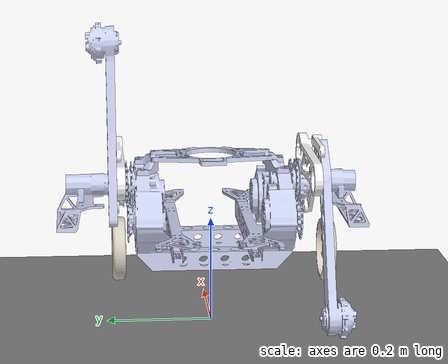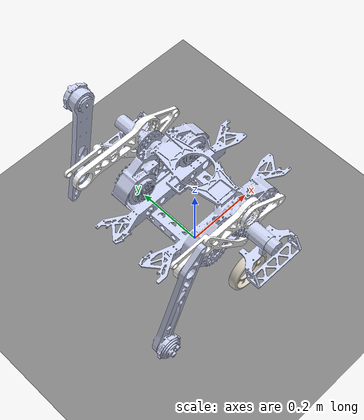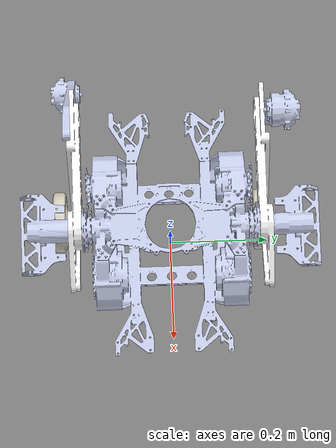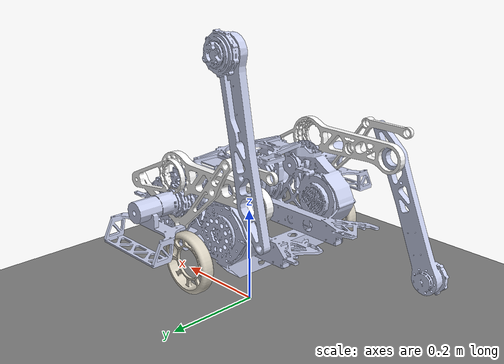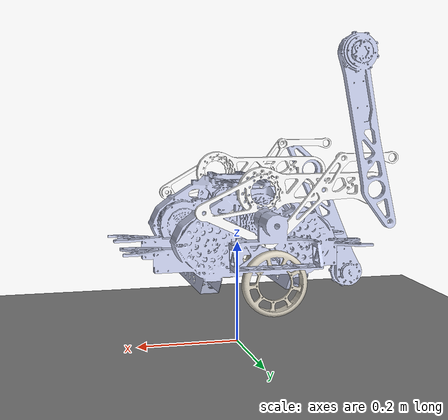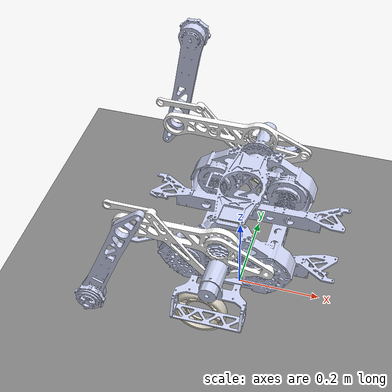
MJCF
<?xml version='1.0' encoding='utf-8'?>
<mujoco model="own_v40_canonical_static_inspection">
  <compiler angle="radian" meshdir="." autolimits="true" inertiafromgeom="false" />
  <option timestep="0.001" integrator="implicitfast" gravity="0 0 -9.81">
    <flag filterparent="disable" />
  </option>
  <asset>
    <mesh name="mesh_000" file="meshes/base_link.STL" scale="1 1 1" />
    <mesh name="mesh_001" file="collisions/base_link_part_000.obj" scale="1 1 1" />
    <mesh name="mesh_002" file="collisions/base_link_part_001.obj" scale="1 1 1" />
    <mesh name="mesh_003" file="collisions/base_link_part_002.obj" scale="1 1 1" />
    <mesh name="mesh_004" file="collisions/base_link_part_003.obj" scale="1 1 1" />
    <mesh name="mesh_005" file="collisions/base_link_part_004.obj" scale="1 1 1" />
    <mesh name="mesh_006" file="collisions/base_link_part_005.obj" scale="1 1 1" />
    <mesh name="mesh_007" file="collisions/base_link_part_006.obj" scale="1 1 1" />
    <mesh name="mesh_008" file="collisions/base_link_part_007.obj" scale="1 1 1" />
    <mesh name="mesh_009" file="collisions/base_link_part_008.obj" scale="1 1 1" />
    <mesh name="mesh_010" file="collisions/base_link_part_009.obj" scale="1 1 1" />
    <mesh name="mesh_011" file="collisions/base_link_part_010.obj" scale="1 1 1" />
    <mesh name="mesh_012" file="collisions/base_link_part_011.obj" scale="1 1 1" />
    <mesh name="mesh_013" file="collisions/base_link_part_012.obj" scale="1 1 1" />
    <mesh name="mesh_014" file="collisions/base_link_part_013.obj" scale="1 1 1" />
    <mesh name="mesh_015" file="meshes/L_link1.STL" scale="1 1 1" />
    <mesh name="mesh_016" file="collisions/L_link1_part_000.obj" scale="1 1 1" />
    <mesh name="mesh_017" file="collisions/L_link1_part_001.obj" scale="1 1 1" />
    <mesh name="mesh_018" file="collisions/L_link1_part_002.obj" scale="1 1 1" />
    <mesh name="mesh_019" file="collisions/L_link1_part_003.obj" scale="1 1 1" />
    <mesh name="mesh_020" file="collisions/L_link1_part_004.obj" scale="1 1 1" />
    <mesh name="mesh_021" file="meshes/L_link2.STL" scale="1 1 1" />
    <mesh name="mesh_022" file="collisions/L_link2_part_000.obj" scale="1 1 1" />
    <mesh name="mesh_023" file="collisions/L_link2_part_001.obj" scale="1 1 1" />
    <mesh name="mesh_024" file="collisions/L_link2_part_002.obj" scale="1 1 1" />
    <mesh name="mesh_025" file="collisions/L_link2_part_003.obj" scale="1 1 1" />
    <mesh name="mesh_026" file="collisions/L_link2_part_004.obj" scale="1 1 1" />
    <mesh name="mesh_027" file="meshes/L_link3.STL" scale="1 1 1" />
    <mesh name="mesh_028" file="meshes/R_link1.STL" scale="1 1 1" />
    <mesh name="mesh_029" file="collisions/R_link1_part_000.obj" scale="1 1 1" />
    <mesh name="mesh_030" file="collisions/R_link1_part_001.obj" scale="1 1 1" />
    <mesh name="mesh_031" file="collisions/R_link1_part_002.obj" scale="1 1 1" />
    <mesh name="mesh_032" file="collisions/R_link1_part_003.obj" scale="1 1 1" />
    <mesh name="mesh_033" file="collisions/R_link1_part_004.obj" scale="1 1 1" />
    <mesh name="mesh_034" file="meshes/R_link2.STL" scale="1 1 1" />
    <mesh name="mesh_035" file="collisions/R_link2_part_000.obj" scale="1 1 1" />
    <mesh name="mesh_036" file="collisions/R_link2_part_001.obj" scale="1 1 1" />
    <mesh name="mesh_037" file="collisions/R_link2_part_002.obj" scale="1 1 1" />
    <mesh name="mesh_038" file="collisions/R_link2_part_003.obj" scale="1 1 1" />
    <mesh name="mesh_039" file="collisions/R_link2_part_004.obj" scale="1 1 1" />
    <mesh name="mesh_040" file="meshes/R_link3.STL" scale="1 1 1" />
  </asset>
  <worldbody>
    <geom name="floor" type="plane" size="2 2 0.1" contype="1" conaffinity="1" />
    <body name="base_link" pos="0 0 0.32">
      <freejoint name="floating_base" />
      <inertial mass="10.8" pos="-0.0050000000000000001 0.00029999999999999997 -0.052999999999999999" fullinertia="0.17799999999999999 0.126 0.255 -0.00026400000000000322 -0.0041229999999999999 -0.00048999999999999977" />
      <geom pos="0 0 0" xyaxes="6.123233995736766e-17 1 0 -1 6.123233995736766e-17 0" name="base_link_visual_000" type="mesh" mesh="mesh_000" group="2" contype="0" conaffinity="0" rgba="0.79216 0.81961 0.93333 1" />
      <geom pos="0 0 0" xyaxes="6.123233995736766e-17 1 0 -1 6.123233995736766e-17 0" name="base_link_collision_000" type="mesh" mesh="mesh_001" group="3" contype="1" conaffinity="1" margin="0" gap="0" rgba="0.8 0.3 0.1 0.25" />
      <geom pos="0 0 0" xyaxes="6.123233995736766e-17 1 0 -1 6.123233995736766e-17 0" name="base_link_collision_001" type="mesh" mesh="mesh_002" group="3" contype="1" conaffinity="1" margin="0" gap="0" rgba="0.8 0.3 0.1 0.25" />
      <geom pos="0 0 0" xyaxes="6.123233995736766e-17 1 0 -1 6.123233995736766e-17 0" name="base_link_collision_002" type="mesh" mesh="mesh_003" group="3" contype="1" conaffinity="1" margin="0" gap="0" rgba="0.8 0.3 0.1 0.25" />
      <geom pos="0 0 0" xyaxes="6.123233995736766e-17 1 0 -1 6.123233995736766e-17 0" name="base_link_collision_003" type="mesh" mesh="mesh_004" group="3" contype="1" conaffinity="1" margin="0" gap="0" rgba="0.8 0.3 0.1 0.25" />
      <geom pos="0 0 0" xyaxes="6.123233995736766e-17 1 0 -1 6.123233995736766e-17 0" name="base_link_collision_004" type="mesh" mesh="mesh_005" group="3" contype="1" conaffinity="1" margin="0" gap="0" rgba="0.8 0.3 0.1 0.25" />
      <geom pos="0 0 0" xyaxes="6.123233995736766e-17 1 0 -1 6.123233995736766e-17 0" name="base_link_collision_005" type="mesh" mesh="mesh_006" group="3" contype="1" conaffinity="1" margin="0" gap="0" rgba="0.8 0.3 0.1 0.25" />
      <geom pos="0 0 0" xyaxes="6.123233995736766e-17 1 0 -1 6.123233995736766e-17 0" name="base_link_collision_006" type="mesh" mesh="mesh_007" group="3" contype="1" conaffinity="1" margin="0" gap="0" rgba="0.8 0.3 0.1 0.25" />
      <geom pos="0 0 0" xyaxes="6.123233995736766e-17 1 0 -1 6.123233995736766e-17 0" name="base_link_collision_007" type="mesh" mesh="mesh_008" group="3" contype="1" conaffinity="1" margin="0" gap="0" rgba="0.8 0.3 0.1 0.25" />
      <geom pos="0 0 0" xyaxes="6.123233995736766e-17 1 0 -1 6.123233995736766e-17 0" name="base_link_collision_008" type="mesh" mesh="mesh_009" group="3" contype="1" conaffinity="1" margin="0" gap="0" rgba="0.8 0.3 0.1 0.25" />
      <geom pos="0 0 0" xyaxes="6.123233995736766e-17 1 0 -1 6.123233995736766e-17 0" name="base_link_collision_009" type="mesh" mesh="mesh_010" group="3" contype="1" conaffinity="1" margin="0" gap="0" rgba="0.8 0.3 0.1 0.25" />
      <geom pos="0 0 0" xyaxes="6.123233995736766e-17 1 0 -1 6.123233995736766e-17 0" name="base_link_collision_010" type="mesh" mesh="mesh_011" group="3" contype="1" conaffinity="1" margin="0" gap="0" rgba="0.8 0.3 0.1 0.25" />
      <geom pos="0 0 0" xyaxes="6.123233995736766e-17 1 0 -1 6.123233995736766e-17 0" name="base_link_collision_011" type="mesh" mesh="mesh_012" group="3" contype="1" conaffinity="1" margin="0" gap="0" rgba="0.8 0.3 0.1 0.25" />
      <geom pos="0 0 0" xyaxes="6.123233995736766e-17 1 0 -1 6.123233995736766e-17 0" name="base_link_collision_012" type="mesh" mesh="mesh_013" group="3" contype="1" conaffinity="1" margin="0" gap="0" rgba="0.8 0.3 0.1 0.25" />
      <geom pos="0 0 0" xyaxes="6.123233995736766e-17 1 0 -1 6.123233995736766e-17 0" name="base_link_collision_013" type="mesh" mesh="mesh_014" group="3" contype="1" conaffinity="1" margin="0" gap="0" rgba="0.8 0.3 0.1 0.25" />
      <body name="L_link1" pos="0 0.18379809434584801 -0.00083696764274401197" xyaxes="-1 -3.4302489988857658e-15 0 -1.5620279753019422e-17 0.0045536868484163384 0.99998963191429469">
        <joint name="L_joint1" type="hinge" axis="0 0 -1" limited="false" />
        <inertial mass="0.326" pos="0.062 -0.0060000000000000001 -0.0030000000000000001" fullinertia="0.00051800000000000001 0.0031830000000000001 0.0036740000000000002 0.00072999999999999996 -8.1000000000000004e-05 -1.8e-05" />
        <geom pos="0 0 0" xyaxes="1 0 0 0 1 0" name="L_link1_visual_000" type="mesh" mesh="mesh_015" group="2" contype="0" conaffinity="0" rgba="1 1 1 1" />
        <geom pos="0 0 0" xyaxes="1 0 0 0 1 0" name="L_link1_collision_000" type="mesh" mesh="mesh_016" group="3" contype="1" conaffinity="1" margin="0" gap="0" rgba="0.8 0.3 0.1 0.25" />
        <geom pos="0 0 0" xyaxes="1 0 0 0 1 0" name="L_link1_collision_001" type="mesh" mesh="mesh_017" group="3" contype="1" conaffinity="1" margin="0" gap="0" rgba="0.8 0.3 0.1 0.25" />
        <geom pos="0 0 0" xyaxes="1 0 0 0 1 0" name="L_link1_collision_002" type="mesh" mesh="mesh_018" group="3" contype="1" conaffinity="1" margin="0" gap="0" rgba="0.8 0.3 0.1 0.25" />
        <geom pos="0 0 0" xyaxes="1 0 0 0 1 0" name="L_link1_collision_003" type="mesh" mesh="mesh_019" group="3" contype="1" conaffinity="1" margin="0" gap="0" rgba="0.8 0.3 0.1 0.25" />
        <geom pos="0 0 0" xyaxes="1 0 0 0 1 0" name="L_link1_collision_004" type="mesh" mesh="mesh_020" group="3" contype="1" conaffinity="1" margin="0" gap="0" rgba="0.8 0.3 0.1 0.25" />
        <body name="L_link2" pos="0.20999999999999999 0 0" xyaxes="-0.74008966191665637 -0.67250820985627324 0 0.67250820985627324 -0.74008966191665637 0">
          <joint name="L_joint2" type="hinge" axis="0 0 1" limited="true" range="-0.1267274153917777 0.6586707480056704" />
          <inertial mass="0.45" pos="0.15962999999999999 8.3412999999999996e-05 0.011927" fullinertia="0.00016699999999999999 0.0048999999999999998 0.00496 8.3999999999999995e-05 0.00019100000000000001 0" />
          <geom pos="0 0 0" xyaxes="1 0 0 0 1 0" name="L_link2_visual_000" type="mesh" mesh="mesh_021" group="2" contype="0" conaffinity="0" rgba="0.79216 0.81961 0.93333 1" />
          <geom pos="0 0 0" xyaxes="1 0 0 0 1 0" name="L_link2_collision_000" type="mesh" mesh="mesh_022" group="3" contype="1" conaffinity="1" margin="0" gap="0" rgba="0.8 0.3 0.1 0.25" />
          <geom pos="0 0 0" xyaxes="1 0 0 0 1 0" name="L_link2_collision_001" type="mesh" mesh="mesh_023" group="3" contype="1" conaffinity="1" margin="0" gap="0" rgba="0.8 0.3 0.1 0.25" />
          <geom pos="0 0 0" xyaxes="1 0 0 0 1 0" name="L_link2_collision_002" type="mesh" mesh="mesh_024" group="3" contype="1" conaffinity="1" margin="0" gap="0" rgba="0.8 0.3 0.1 0.25" />
          <geom pos="0 0 0" xyaxes="1 0 0 0 1 0" name="L_link2_collision_003" type="mesh" mesh="mesh_025" group="3" contype="1" conaffinity="1" margin="0" gap="0" rgba="0.8 0.3 0.1 0.25" />
          <geom pos="0 0 0" xyaxes="1 0 0 0 1 0" name="L_link2_collision_004" type="mesh" mesh="mesh_026" group="3" contype="1" conaffinity="1" margin="0" gap="0" rgba="0.8 0.3 0.1 0.25" />
          <body name="L_link3" pos="0.25 0 0.014999999999999999" xyaxes="-3.6732051033465739e-06 -0.99999999999325373 0 0.99999999999325373 -3.6732051033465739e-06 0">
            <joint name="L_joint3" type="hinge" axis="0 0 1" limited="false" />
            <inertial mass="0.2" pos="0 0 0.020472000000000001" fullinertia="0.00029599999999999998 0.00029599999999999998 0.00057499999999999999 0 0 0" />
            <geom pos="0 0 0" xyaxes="1 0 0 0 1 0" name="L_link3_visual_000" type="mesh" mesh="mesh_027" group="2" contype="0" conaffinity="0" rgba="0.84314 0.81569 0.75294 1" />
            <geom pos="0 0 0.020350000821053982" xyaxes="1 0 0 0 1 0" name="L_link3_collision_000" type="cylinder" size="0.060000003250648436 0.012500000186264515" group="3" contype="1" conaffinity="1" margin="0" gap="0" rgba="0.8 0.3 0.1 0.25" />
          </body>
        </body>
      </body>
      <body name="R_link1" pos="0 -0.18279810471393301 0.00083241395589111295" xyaxes="-1 -3.4302489988857658e-15 0 -1.5620279753019422e-17 0.0045536868484163384 0.99998963191429469">
        <joint name="R_joint1" type="hinge" axis="0 0 1" limited="false" />
        <inertial mass="0.326" pos="0.062 -0.0060000000000000001 0.0030000000000000001" fullinertia="0.00051800000000000001 0.0031830000000000001 0.0036740000000000002 0.00072999999999999996 8.1000000000000004e-05 1.8e-05" />
        <geom pos="0 0 0" xyaxes="1 0 0 0 1 0" name="R_link1_visual_000" type="mesh" mesh="mesh_028" group="2" contype="0" conaffinity="0" rgba="1 1 1 1" />
        <geom pos="0 0 0" xyaxes="1 0 0 0 1 0" name="R_link1_collision_000" type="mesh" mesh="mesh_029" group="3" contype="1" conaffinity="1" margin="0" gap="0" rgba="0.8 0.3 0.1 0.25" />
        <geom pos="0 0 0" xyaxes="1 0 0 0 1 0" name="R_link1_collision_001" type="mesh" mesh="mesh_030" group="3" contype="1" conaffinity="1" margin="0" gap="0" rgba="0.8 0.3 0.1 0.25" />
        <geom pos="0 0 0" xyaxes="1 0 0 0 1 0" name="R_link1_collision_002" type="mesh" mesh="mesh_031" group="3" contype="1" conaffinity="1" margin="0" gap="0" rgba="0.8 0.3 0.1 0.25" />
        <geom pos="0 0 0" xyaxes="1 0 0 0 1 0" name="R_link1_collision_003" type="mesh" mesh="mesh_032" group="3" contype="1" conaffinity="1" margin="0" gap="0" rgba="0.8 0.3 0.1 0.25" />
        <geom pos="0 0 0" xyaxes="1 0 0 0 1 0" name="R_link1_collision_004" type="mesh" mesh="mesh_033" group="3" contype="1" conaffinity="1" margin="0" gap="0" rgba="0.8 0.3 0.1 0.25" />
        <body name="R_link2" pos="0.20999999999999999 0 0" xyaxes="-0.70788806241306346 -0.70632463576819882 0 0.70632463576819882 -0.70788806241306346 0">
          <joint name="R_jonit2" type="hinge" axis="0 0 -1" limited="true" range="-0.6119707480056704 0.1734274153917776" />
          <inertial mass="0.45" pos="0.15962999999999999 8.3411999999999994e-05 -0.011927" fullinertia="0.00016699999999999999 0.0048999999999999998 0.00496 8.3999999999999995e-05 -0.000192 0" />
          <geom pos="0 0 0" xyaxes="1 0 0 0 1 0" name="R_link2_visual_000" type="mesh" mesh="mesh_034" group="2" contype="0" conaffinity="0" rgba="0.79216 0.81961 0.93333 1" />
          <geom pos="0 0 0" xyaxes="1 0 0 0 1 0" name="R_link2_collision_000" type="mesh" mesh="mesh_035" group="3" contype="1" conaffinity="1" margin="0" gap="0" rgba="0.8 0.3 0.1 0.25" />
          <geom pos="0 0 0" xyaxes="1 0 0 0 1 0" name="R_link2_collision_001" type="mesh" mesh="mesh_036" group="3" contype="1" conaffinity="1" margin="0" gap="0" rgba="0.8 0.3 0.1 0.25" />
          <geom pos="0 0 0" xyaxes="1 0 0 0 1 0" name="R_link2_collision_002" type="mesh" mesh="mesh_037" group="3" contype="1" conaffinity="1" margin="0" gap="0" rgba="0.8 0.3 0.1 0.25" />
          <geom pos="0 0 0" xyaxes="1 0 0 0 1 0" name="R_link2_collision_003" type="mesh" mesh="mesh_038" group="3" contype="1" conaffinity="1" margin="0" gap="0" rgba="0.8 0.3 0.1 0.25" />
          <geom pos="0 0 0" xyaxes="1 0 0 0 1 0" name="R_link2_collision_004" type="mesh" mesh="mesh_039" group="3" contype="1" conaffinity="1" margin="0" gap="0" rgba="0.8 0.3 0.1 0.25" />
          <body name="R_link3" pos="0.249999999999996 0 -0.0150000000000006" xyaxes="-1 3.2310891488651735e-15 0 -3.2310891488651735e-15 -1 0">
            <joint name="R_joint3" type="hinge" axis="0 0 -1" limited="false" />
            <inertial mass="0.2" pos="0 0 -0.020472000000000001" fullinertia="0.00029599999999999998 0.00029599999999999998 0.00057499999999999999 0 0 0" />
            <geom pos="0 0 0" xyaxes="1 0 0 0 1 0" name="R_link3_visual_000" type="mesh" mesh="mesh_040" group="2" contype="0" conaffinity="0" rgba="0.84314 0.81569 0.75294 1" />
            <geom pos="0 0 -0.020350000821053982" xyaxes="1 0 0 0 1 0" name="R_link3_collision_000" type="cylinder" size="0.060000003154563872 0.012500000186264515" group="3" contype="1" conaffinity="1" margin="0" gap="0" rgba="0.8 0.3 0.1 0.25" />
          </body>
        </body>
      </body>
    </body>
  </worldbody>
  <contact>
    <exclude name="L_joint1_adjacent" body1="base_link" body2="L_link1" />
    <exclude name="L_joint2_adjacent" body1="L_link1" body2="L_link2" />
    <exclude name="L_joint3_adjacent" body1="L_link2" body2="L_link3" />
    <exclude name="R_joint1_adjacent" body1="base_link" body2="R_link1" />
    <exclude name="R_jonit2_adjacent" body1="R_link1" body2="R_link2" />
    <exclude name="R_joint3_adjacent" body1="R_link2" body2="R_link3" />
  </contact>
  <actuator>
    <motor name="L_joint1" joint="L_joint1" gear="1" ctrllimited="true" ctrlrange="-1 1" />
    <motor name="L_joint2" joint="L_joint2" gear="1" ctrllimited="true" ctrlrange="-1 1" />
    <motor name="L_joint3" joint="L_joint3" gear="1" ctrllimited="true" ctrlrange="-1 1" />
    <motor name="R_joint1" joint="R_joint1" gear="1" ctrllimited="true" ctrlrange="-1 1" />
    <motor name="R_jonit2" joint="R_jonit2" gear="1" ctrllimited="true" ctrlrange="-1 1" />
    <motor name="R_joint3" joint="R_joint3" gear="1" ctrllimited="true" ctrlrange="-1 1" />
  </actuator>
  <keyframe>
    <key name="nominal_candidate" qpos="0 0 0.32000000000000001 1 0 0 0 0.41526541073209217 0.44890796255584864 0 -0.42250891703703075 -0.41299561952806407 0" />
  </keyframe>
</mujoco>
